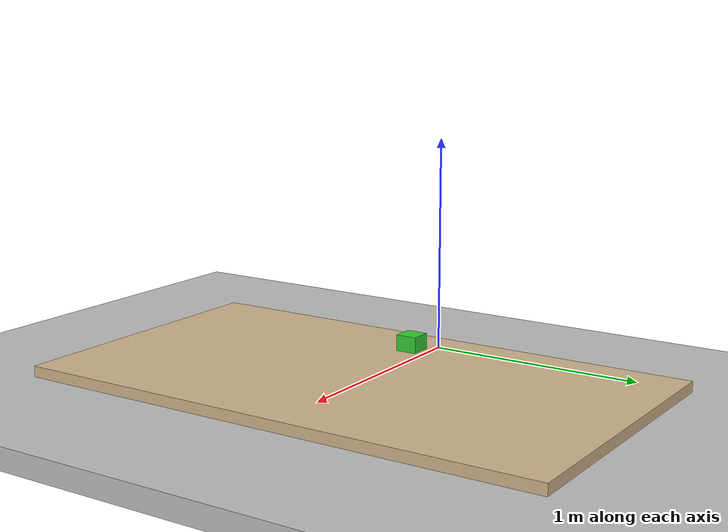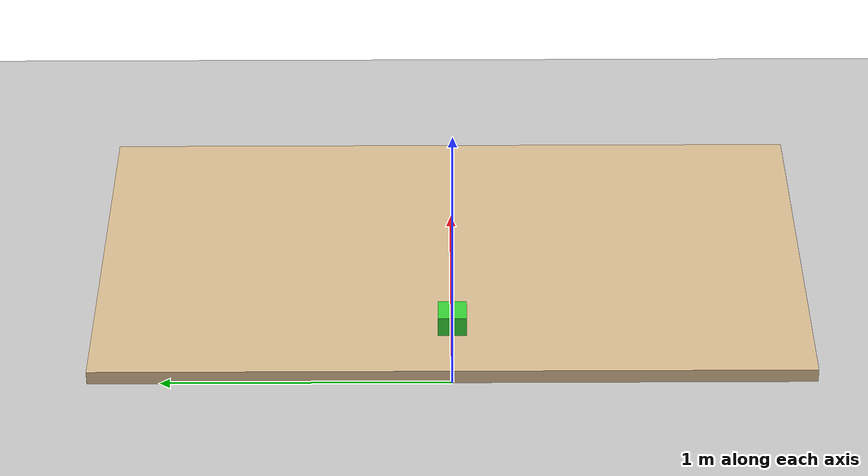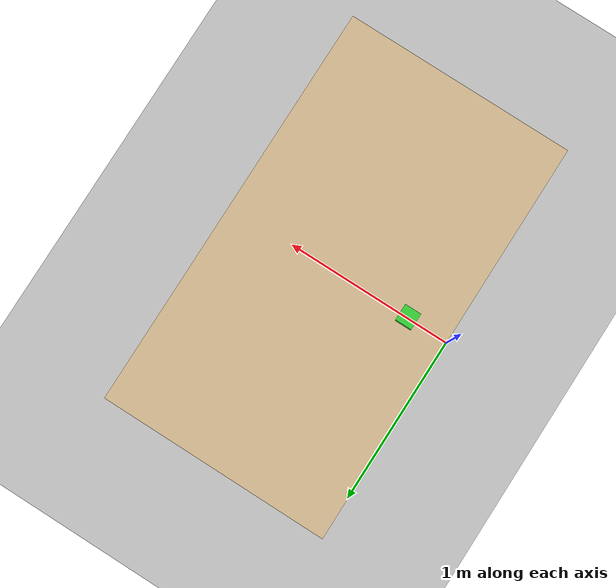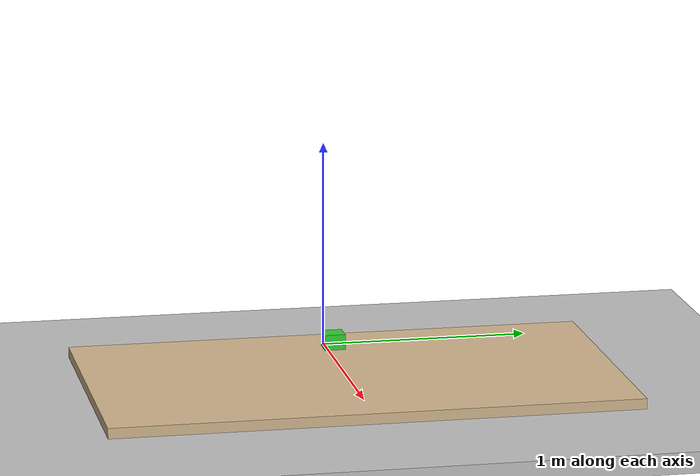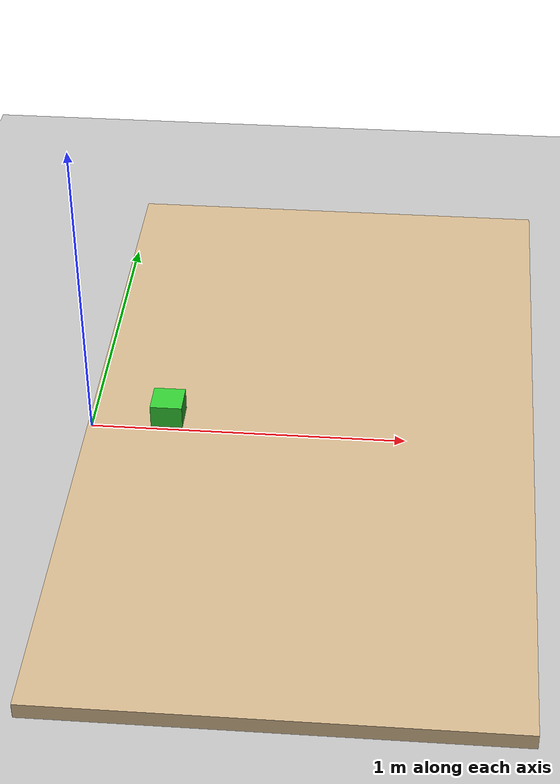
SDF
<?xml version="1.0" ?>
<sdf version="1.6">
  <world name="pick_and_place_sorting_world">
    <!-- Floor -->
    <include>
      <uri>file://../models/objects_scenes/floor.sdf</uri>
    </include>

    <!-- Table agrandie ~3.5x : 0.4x0.75 -> 1.4x2.5, recentrée sous le robot -->
    <model name="table_source">
      <static>true</static>
      <pose>0.7 0 0.025 0 0 0</pose>
      <link name="table_source_top_link">
        <visual name="visual">
          <geometry>
            <box>
              <size>1.4 2.5 0.05</size>
            </box>
          </geometry>
          <material>
            <diffuse>0.82 0.71 0.55 1.0</diffuse>
            <specular>0.2 0.2 0.2 1.0</specular>
          </material>
        </visual>
        <collision name="collision">
          <geometry>
            <box>
              <size>1.4 2.5 0.05</size>
            </box>
          </geometry>
          <drake:proximity_properties>
            <drake:mu_dynamic>0.5</drake:mu_dynamic>
            <drake:mu_static>0.6</drake:mu_static>
          </drake:proximity_properties>
        </collision>
      </link>
    </model>

    <model name="cube">
      <pose>0.25 0 0.075 0 0 0</pose>
      <static>false</static>
      <link name="link">
        <inertial>
          <mass>0.5</mass>
        </inertial>
        <collision name="collision">
          <geometry>
            <box>
              <size>0.1 0.1 0.1</size>
            </box>
          </geometry>
          <drake:proximity_properties>
            <drake:mu_dynamic>0.5</drake:mu_dynamic>
            <drake:mu_static>0.6</drake:mu_static>
          </drake:proximity_properties>
        </collision>
        <visual name="visual">
          <geometry>
            <box>
              <size>0.1 0.1 0.1</size>
            </box>
          </geometry>
          <material>
            <diffuse>0.2 0.8 0.2 1.0</diffuse>
          </material>
        </visual>
      </link>
    </model>
  </world>
</sdf>

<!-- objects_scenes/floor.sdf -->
<sdf version="1.6">
  <model name="ground_floor">
    <static>true</static>
    <pose>0 0 -0.05 0 0 0</pose>
    <link name="link">
      <collision name="GroundCollisionGeometry">
        <geometry>
          <box>
            <size>50 50 0.1</size>
          </box>
        </geometry>
        <drake:proximity_properties>
          <drake:mu_dynamic>0.5</drake:mu_dynamic>
          <drake:mu_static>0.5</drake:mu_static>
        </drake:proximity_properties>
      </collision>
      <visual name="GroundVisualGeometry">
        <geometry>
          <box>
            <size>50 50 0.1</size>
          </box>
        </geometry>
        <material>
          <diffuse>0.75 0.75 0.75 1.0</diffuse>
        </material>
      </visual>
    </link>
  </model>
</sdf>
